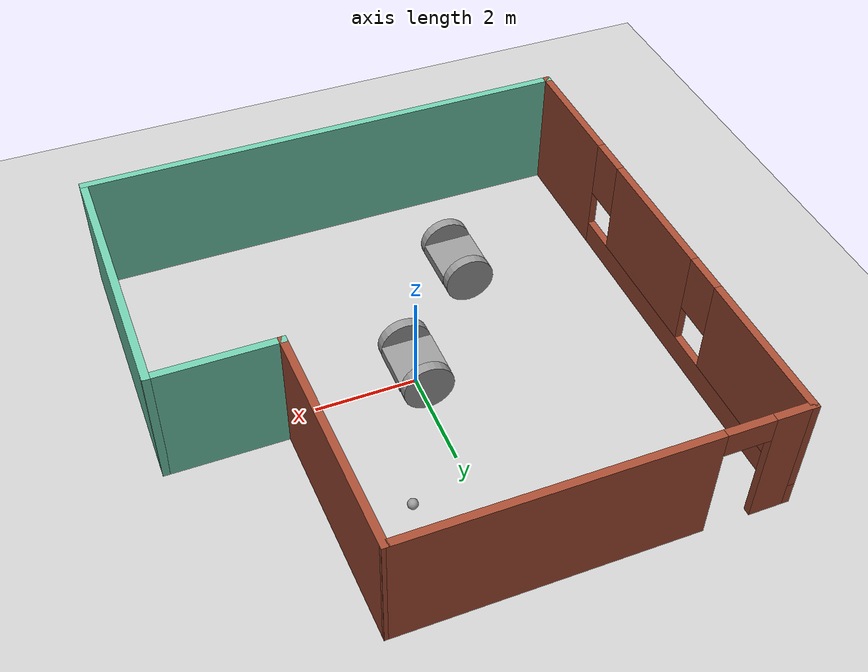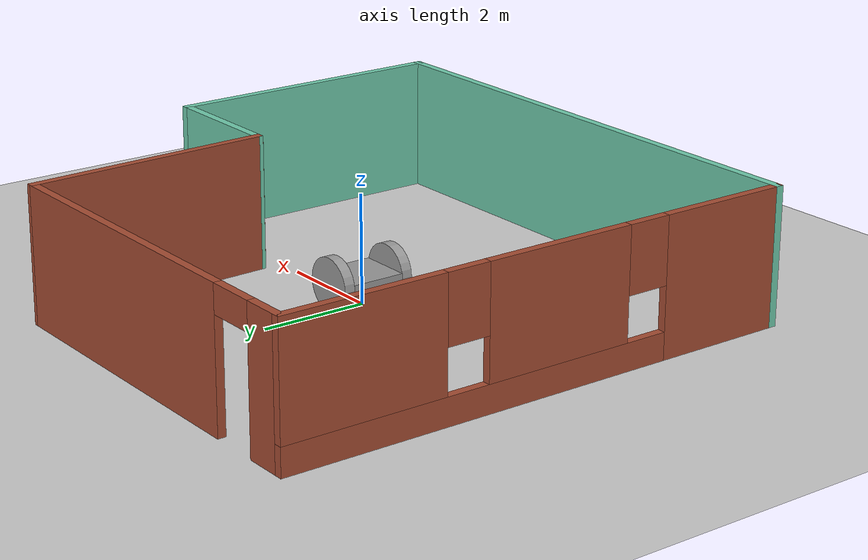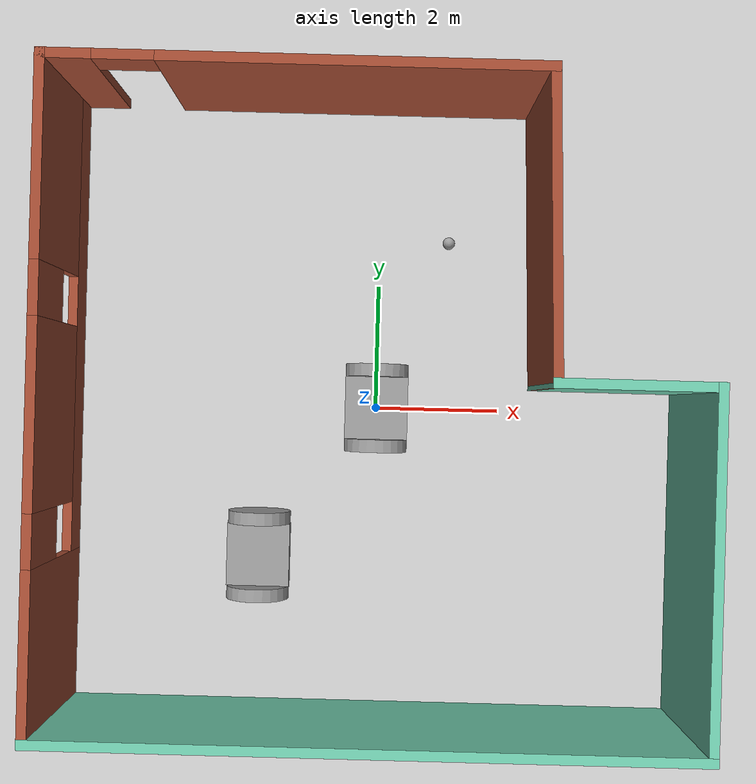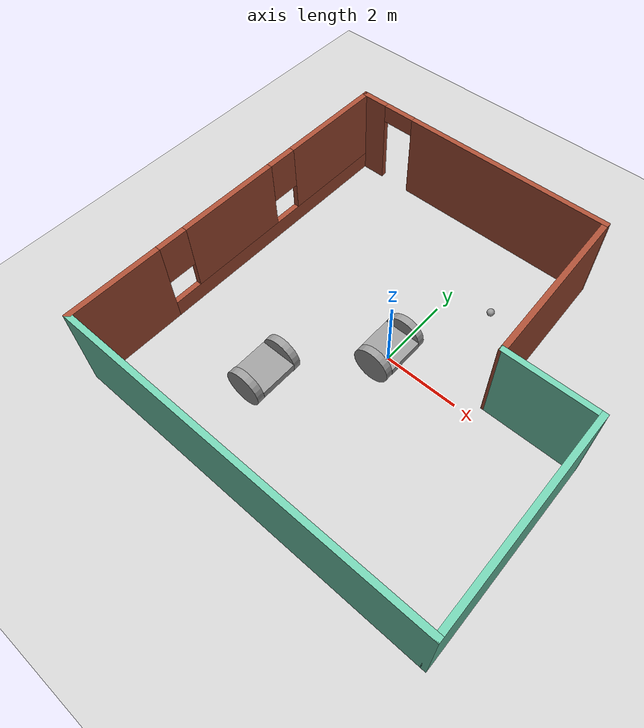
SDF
<sdf version="1.6">
 <world name="default">
  <plugin name="hello" filename="libhello.so"/>
  <light name="sun" type="directional">
   <pose>0 0 10 0 -0 0</pose>
   <diffuse>0.8 0.8 0.8 1</diffuse>
   <specular>0.2 0.2 0.2 1</specular>
   <attenuation>
    <range>1000</range>
    <constant>0.9</constant>
    <linear>0.01</linear>
    <quadratic>0.001</quadratic>
   </attenuation>
   <direction>-0.5 0.1 -0.9</direction>
  </light>
  <model name="ground_plane">
   <static>1</static>
   <link name="link">
    <collision name="collision">
     <geometry><plane><normal>0 0 1</normal><size>100 100</size></plane></geometry>
     <surface>
      <contact><collide_bitmask>65535</collide_bitmask></contact>
      <friction><ode><mu>100</mu><mu2>50</mu2></ode></friction>
     </surface>
    </collision>
    <visual name="visual">
     <cast_shadows>0</cast_shadows>
     <geometry><plane><normal>0 0 1</normal><size>100 100</size></plane></geometry>
     <material>
      <script><uri>file://media/materials/scripts/gazebo.material</uri><name>Gazebo/Grey</name></script>
     </material>
    </visual>
   </link>
  </model>
  <gravity>0 0 -9.8</gravity>
  <magnetic_field>6e-06 2.3e-05 -4.2e-05</magnetic_field>
  <atmosphere type="adiabatic"/>
  <physics name="default_physics" default="0" type="ode">
   <max_step_size>0.001</max_step_size>
   <real_time_factor>1</real_time_factor>
   <real_time_update_rate>1000</real_time_update_rate>
  </physics>
  <scene><ambient>0.4 0.4 0.4 1</ambient><background>0.7 0.7 0.7 1</background><shadows>1</shadows></scene>
  <spherical_coordinates>
   <surface_model>EARTH_WGS84</surface_model>
   <latitude_deg>0</latitude_deg>
   <longitude_deg>0</longitude_deg>
   <elevation>0</elevation>
   <heading_deg>0</heading_deg>
  </spherical_coordinates>
  <model name="Robot">
   <link name="link_0">
    <inertial>
     <mass>1</mass>
     <inertia>
      <ixx>0.166667</ixx>
      <ixy>0</ixy>
      <ixz>0</ixz>
      <iyy>0.166667</iyy>
      <iyz>0</iyz>
      <izz>0.166667</izz>
     </inertia>
    </inertial>
    <visual name="visual">
     <geometry><box><size>1 1 0.2</size></box></geometry>
     <material>
      <lighting>1</lighting>
      <script><uri>file://media/materials/scripts/gazebo.material</uri><name>Gazebo/Grey</name></script>
      <shader type="pixel"><normal_map>__default__</normal_map></shader>
      <ambient>0.3 0.3 0.3 1</ambient>
      <diffuse>0.7 0.7 0.7 1</diffuse>
      <specular>0.01 0.01 0.01 1</specular>
      <emissive>0 0 0 1</emissive>
     </material>
    </visual>
    <collision name="collision">
     <geometry><box><size>1 1 0.2</size></box></geometry>
     <surface>
      <friction>
       <ode><mu>1</mu><mu2>1</mu2><fdir1>0 0 0</fdir1><slip1>0</slip1><slip2>0</slip2></ode>
       <torsional>
        <coefficient>1</coefficient>
        <patch_radius>0</patch_radius>
        <surface_radius>0</surface_radius>
        <use_patch_radius>1</use_patch_radius>
        <ode><slip>0</slip></ode>
       </torsional>
      </friction>
      <bounce><restitution_coefficient>0</restitution_coefficient><threshold>1e+06</threshold></bounce>
      <contact>
       <collide_without_contact>0</collide_without_contact>
       <collide_without_contact_bitmask>1</collide_without_contact_bitmask>
       <collide_bitmask>1</collide_bitmask>
       <ode>
        <soft_cfm>0</soft_cfm>
        <soft_erp>0.2</soft_erp>
        <kp>1e+13</kp>
        <kd>1</kd>
        <max_vel>0.01</max_vel>
        <min_depth>0</min_depth>
       </ode>
       <bullet>
        <split_impulse>1</split_impulse>
        <split_impulse_penetration_threshold>-0.01</split_impulse_penetration_threshold>
        <soft_cfm>0</soft_cfm>
        <soft_erp>0.2</soft_erp>
        <kp>1e+13</kp>
        <kd>1</kd>
       </bullet>
      </contact>
     </surface>
    </collision>
   </link>
   <link name="link_1">
    <pose>0 0.6 0 1.5708 -0 0</pose>
    <inertial>
     <mass>1</mass>
     <inertia><ixx>0.145833</ixx><ixy>0</ixy><ixz>0</ixz><iyy>0.145833</iyy><iyz>0</iyz><izz>0.125</izz></inertia>
    </inertial>
    <visual name="visual">
     <geometry><cylinder><radius>0.5</radius><length>0.2</length></cylinder></geometry>
     <material>
      <lighting>1</lighting>
      <script><uri>file://media/materials/scripts/gazebo.material</uri><name>Gazebo/Grey</name></script>
      <shader type="pixel"><normal_map>__default__</normal_map></shader>
      <ambient>0.3 0.3 0.3 1</ambient>
      <diffuse>0.7 0.7 0.7 1</diffuse>
      <specular>0.01 0.01 0.01 1</specular>
      <emissive>0 0 0 1</emissive>
     </material>
    </visual>
    <collision name="collision">
     <geometry><cylinder><radius>0.5</radius><length>0.2</length></cylinder></geometry>
     <surface>
      <friction>
       <ode><mu>1</mu><mu2>1</mu2><fdir1>0 0 0</fdir1><slip1>0</slip1><slip2>0</slip2></ode>
       <torsional>
        <coefficient>1</coefficient>
        <patch_radius>0</patch_radius>
        <surface_radius>0</surface_radius>
        <use_patch_radius>1</use_patch_radius>
        <ode><slip>0</slip></ode>
       </torsional>
      </friction>
      <bounce><restitution_coefficient>0</restitution_coefficient><threshold>1e+06</threshold></bounce>
      <contact>
       <collide_without_contact>0</collide_without_contact>
       <collide_without_contact_bitmask>1</collide_without_contact_bitmask>
       <collide_bitmask>1</collide_bitmask>
       <ode>
        <soft_cfm>0</soft_cfm>
        <soft_erp>0.2</soft_erp>
        <kp>1e+13</kp>
        <kd>1</kd>
        <max_vel>0.01</max_vel>
        <min_depth>0</min_depth>
       </ode>
       <bullet>
        <split_impulse>1</split_impulse>
        <split_impulse_penetration_threshold>-0.01</split_impulse_penetration_threshold>
        <soft_cfm>0</soft_cfm>
        <soft_erp>0.2</soft_erp>
        <kp>1e+13</kp>
        <kd>1</kd>
       </bullet>
      </contact>
     </surface>
    </collision>
   </link>
   <link name="link_1_clone">
    <pose>0 -0.6 0 1.5708 -0 0</pose>
    <inertial>
     <mass>1</mass>
     <inertia><ixx>0.145833</ixx><ixy>0</ixy><ixz>0</ixz><iyy>0.145833</iyy><iyz>0</iyz><izz>0.125</izz></inertia>
    </inertial>
    <visual name="visual">
     <geometry><cylinder><radius>0.5</radius><length>0.2</length></cylinder></geometry>
     <material>
      <lighting>1</lighting>
      <script><uri>file://media/materials/scripts/gazebo.material</uri><name>Gazebo/Grey</name></script>
      <shader type="pixel"><normal_map>__default__</normal_map></shader>
      <ambient>0.3 0.3 0.3 1</ambient>
      <diffuse>0.7 0.7 0.7 1</diffuse>
      <specular>0.01 0.01 0.01 1</specular>
      <emissive>0 0 0 1</emissive>
     </material>
    </visual>
    <collision name="collision">
     <geometry><cylinder><radius>0.5</radius><length>0.2</length></cylinder></geometry>
     <surface>
      <friction>
       <ode><mu>1</mu><mu2>1</mu2><fdir1>0 0 0</fdir1><slip1>0</slip1><slip2>0</slip2></ode>
       <torsional>
        <coefficient>1</coefficient>
        <patch_radius>0</patch_radius>
        <surface_radius>0</surface_radius>
        <use_patch_radius>1</use_patch_radius>
        <ode><slip>0</slip></ode>
       </torsional>
      </friction>
      <bounce><restitution_coefficient>0</restitution_coefficient><threshold>1e+06</threshold></bounce>
      <contact>
       <collide_without_contact>0</collide_without_contact>
       <collide_without_contact_bitmask>1</collide_without_contact_bitmask>
       <collide_bitmask>1</collide_bitmask>
       <ode>
        <soft_cfm>0</soft_cfm>
        <soft_erp>0.2</soft_erp>
        <kp>1e+13</kp>
        <kd>1</kd>
        <max_vel>0.01</max_vel>
        <min_depth>0</min_depth>
       </ode>
       <bullet>
        <split_impulse>1</split_impulse>
        <split_impulse_penetration_threshold>-0.01</split_impulse_penetration_threshold>
        <soft_cfm>0</soft_cfm>
        <soft_erp>0.2</soft_erp>
        <kp>1e+13</kp>
        <kd>1</kd>
       </bullet>
      </contact>
     </surface>
    </collision>
   </link>
   <joint name="link_0_JOINT_0" type="revolute">
    <parent>link_0</parent>
    <child>link_1_clone</child>
    <axis>
     <xyz>1 0 0</xyz>
     <use_parent_model_frame>0</use_parent_model_frame>
     <limit>
      <lower>-1.79769e+308</lower>
      <upper>1.79769e+308</upper>
      <effort>-1</effort>
      <velocity>-1</velocity>
     </limit>
     <dynamics>
      <spring_reference>0</spring_reference>
      <spring_stiffness>0</spring_stiffness>
      <damping>0</damping>
     </dynamics>
    </axis>
    <physics>
     <ode><limit><cfm>0</cfm><erp>0.2</erp></limit><suspension><cfm>0</cfm><erp>0.2</erp></suspension></ode>
    </physics>
   </joint>
   <joint name="link_0_JOINT_1" type="revolute">
    <parent>link_0</parent>
    <child>link_1</child>
    <axis>
     <xyz>1 0 0</xyz>
     <use_parent_model_frame>0</use_parent_model_frame>
     <limit>
      <lower>-1.79769e+308</lower>
      <upper>1.79769e+308</upper>
      <effort>-1</effort>
      <velocity>-1</velocity>
     </limit>
     <dynamics>
      <spring_reference>0</spring_reference>
      <spring_stiffness>0</spring_stiffness>
      <damping>0</damping>
     </dynamics>
    </axis>
    <physics>
     <ode><limit><cfm>0</cfm><erp>0.2</erp></limit><suspension><cfm>0</cfm><erp>0.2</erp></suspension></ode>
    </physics>
   </joint>
   <static>0</static>
   <pose>0 -0.001839 0.499997 4e-06 -0 0</pose>
  </model>
  <model name="Robot_0">
   <link name="link_0">
    <inertial>
     <mass>1</mass>
     <inertia>
      <ixx>0.166667</ixx>
      <ixy>0</ixy>
      <ixz>0</ixz>
      <iyy>0.166667</iyy>
      <iyz>0</iyz>
      <izz>0.166667</izz>
     </inertia>
    </inertial>
    <visual name="visual">
     <geometry><box><size>1 1 0.2</size></box></geometry>
     <material>
      <lighting>1</lighting>
      <script><uri>file://media/materials/scripts/gazebo.material</uri><name>Gazebo/Grey</name></script>
      <shader type="pixel"><normal_map>__default__</normal_map></shader>
      <ambient>0.3 0.3 0.3 1</ambient>
      <diffuse>0.7 0.7 0.7 1</diffuse>
      <specular>0.01 0.01 0.01 1</specular>
      <emissive>0 0 0 1</emissive>
     </material>
    </visual>
    <collision name="collision">
     <geometry><box><size>1 1 0.2</size></box></geometry>
     <surface>
      <friction>
       <ode><mu>1</mu><mu2>1</mu2><fdir1>0 0 0</fdir1><slip1>0</slip1><slip2>0</slip2></ode>
       <torsional>
        <coefficient>1</coefficient>
        <patch_radius>0</patch_radius>
        <surface_radius>0</surface_radius>
        <use_patch_radius>1</use_patch_radius>
        <ode><slip>0</slip></ode>
       </torsional>
      </friction>
      <bounce><restitution_coefficient>0</restitution_coefficient><threshold>1e+06</threshold></bounce>
      <contact>
       <collide_without_contact>0</collide_without_contact>
       <collide_without_contact_bitmask>1</collide_without_contact_bitmask>
       <collide_bitmask>1</collide_bitmask>
       <ode>
        <soft_cfm>0</soft_cfm>
        <soft_erp>0.2</soft_erp>
        <kp>1e+13</kp>
        <kd>1</kd>
        <max_vel>0.01</max_vel>
        <min_depth>0</min_depth>
       </ode>
       <bullet>
        <split_impulse>1</split_impulse>
        <split_impulse_penetration_threshold>-0.01</split_impulse_penetration_threshold>
        <soft_cfm>0</soft_cfm>
        <soft_erp>0.2</soft_erp>
        <kp>1e+13</kp>
        <kd>1</kd>
       </bullet>
      </contact>
     </surface>
    </collision>
   </link>
   <link name="link_1">
    <pose>0 0.6 0 1.5708 -0 0</pose>
    <inertial>
     <mass>1</mass>
     <inertia><ixx>0.145833</ixx><ixy>0</ixy><ixz>0</ixz><iyy>0.145833</iyy><iyz>0</iyz><izz>0.125</izz></inertia>
    </inertial>
    <visual name="visual">
     <geometry><cylinder><radius>0.5</radius><length>0.2</length></cylinder></geometry>
     <material>
      <lighting>1</lighting>
      <script><uri>file://media/materials/scripts/gazebo.material</uri><name>Gazebo/Grey</name></script>
      <shader type="pixel"><normal_map>__default__</normal_map></shader>
      <ambient>0.3 0.3 0.3 1</ambient>
      <diffuse>0.7 0.7 0.7 1</diffuse>
      <specular>0.01 0.01 0.01 1</specular>
      <emissive>0 0 0 1</emissive>
     </material>
    </visual>
    <collision name="collision">
     <geometry><cylinder><radius>0.5</radius><length>0.2</length></cylinder></geometry>
     <surface>
      <friction>
       <ode><mu>1</mu><mu2>1</mu2><fdir1>0 0 0</fdir1><slip1>0</slip1><slip2>0</slip2></ode>
       <torsional>
        <coefficient>1</coefficient>
        <patch_radius>0</patch_radius>
        <surface_radius>0</surface_radius>
        <use_patch_radius>1</use_patch_radius>
        <ode><slip>0</slip></ode>
       </torsional>
      </friction>
      <bounce><restitution_coefficient>0</restitution_coefficient><threshold>1e+06</threshold></bounce>
      <contact>
       <collide_without_contact>0</collide_without_contact>
       <collide_without_contact_bitmask>1</collide_without_contact_bitmask>
       <collide_bitmask>1</collide_bitmask>
       <ode>
        <soft_cfm>0</soft_cfm>
        <soft_erp>0.2</soft_erp>
        <kp>1e+13</kp>
        <kd>1</kd>
        <max_vel>0.01</max_vel>
        <min_depth>0</min_depth>
       </ode>
       <bullet>
        <split_impulse>1</split_impulse>
        <split_impulse_penetration_threshold>-0.01</split_impulse_penetration_threshold>
        <soft_cfm>0</soft_cfm>
        <soft_erp>0.2</soft_erp>
        <kp>1e+13</kp>
        <kd>1</kd>
       </bullet>
      </contact>
     </surface>
    </collision>
   </link>
   <link name="link_1_clone">
    <pose>0 -0.6 0 1.5708 -0 0</pose>
    <inertial>
     <mass>1</mass>
     <inertia><ixx>0.145833</ixx><ixy>0</ixy><ixz>0</ixz><iyy>0.145833</iyy><iyz>0</iyz><izz>0.125</izz></inertia>
    </inertial>
    <visual name="visual">
     <geometry><cylinder><radius>0.5</radius><length>0.2</length></cylinder></geometry>
     <material>
      <lighting>1</lighting>
      <script><uri>file://media/materials/scripts/gazebo.material</uri><name>Gazebo/Grey</name></script>
      <shader type="pixel"><normal_map>__default__</normal_map></shader>
      <ambient>0.3 0.3 0.3 1</ambient>
      <diffuse>0.7 0.7 0.7 1</diffuse>
      <specular>0.01 0.01 0.01 1</specular>
      <emissive>0 0 0 1</emissive>
     </material>
    </visual>
    <collision name="collision">
     <geometry><cylinder><radius>0.5</radius><length>0.2</length></cylinder></geometry>
     <surface>
      <friction>
       <ode><mu>1</mu><mu2>1</mu2><fdir1>0 0 0</fdir1><slip1>0</slip1><slip2>0</slip2></ode>
       <torsional>
        <coefficient>1</coefficient>
        <patch_radius>0</patch_radius>
        <surface_radius>0</surface_radius>
        <use_patch_radius>1</use_patch_radius>
        <ode><slip>0</slip></ode>
       </torsional>
      </friction>
      <bounce><restitution_coefficient>0</restitution_coefficient><threshold>1e+06</threshold></bounce>
      <contact>
       <collide_without_contact>0</collide_without_contact>
       <collide_without_contact_bitmask>1</collide_without_contact_bitmask>
       <collide_bitmask>1</collide_bitmask>
       <ode>
        <soft_cfm>0</soft_cfm>
        <soft_erp>0.2</soft_erp>
        <kp>1e+13</kp>
        <kd>1</kd>
        <max_vel>0.01</max_vel>
        <min_depth>0</min_depth>
       </ode>
       <bullet>
        <split_impulse>1</split_impulse>
        <split_impulse_penetration_threshold>-0.01</split_impulse_penetration_threshold>
        <soft_cfm>0</soft_cfm>
        <soft_erp>0.2</soft_erp>
        <kp>1e+13</kp>
        <kd>1</kd>
       </bullet>
      </contact>
     </surface>
    </collision>
   </link>
   <joint name="link_0_JOINT_0" type="revolute">
    <parent>link_0</parent>
    <child>link_1_clone</child>
    <axis>
     <xyz>1 0 0</xyz>
     <use_parent_model_frame>0</use_parent_model_frame>
     <limit>
      <lower>-1.79769e+308</lower>
      <upper>1.79769e+308</upper>
      <effort>-1</effort>
      <velocity>-1</velocity>
     </limit>
     <dynamics>
      <spring_reference>0</spring_reference>
      <spring_stiffness>0</spring_stiffness>
      <damping>0</damping>
     </dynamics>
    </axis>
    <physics>
     <ode><limit><cfm>0</cfm><erp>0.2</erp></limit><suspension><cfm>0</cfm><erp>0.2</erp></suspension></ode>
    </physics>
   </joint>
   <joint name="link_0_JOINT_1" type="revolute">
    <parent>link_0</parent>
    <child>link_1</child>
    <axis>
     <xyz>1 0 0</xyz>
     <use_parent_model_frame>0</use_parent_model_frame>
     <limit>
      <lower>-1.79769e+308</lower>
      <upper>1.79769e+308</upper>
      <effort>-1</effort>
      <velocity>-1</velocity>
     </limit>
     <dynamics>
      <spring_reference>0</spring_reference>
      <spring_stiffness>0</spring_stiffness>
      <damping>0</damping>
     </dynamics>
    </axis>
    <physics>
     <ode><limit><cfm>0</cfm><erp>0.2</erp></limit><suspension><cfm>0</cfm><erp>0.2</erp></suspension></ode>
    </physics>
   </joint>
   <static>0</static>
   <pose>-1.83002 -2.39669 0.499997 4e-06 -0 0</pose>
  </model>
  <model name="Building">
   <link name="Wall_0">
    <collision name="Wall_0_Collision">
     <geometry><box><size>10 0.15 2.5</size></box></geometry>
     <pose>0 0 1.25 0 -0 0</pose>
    </collision>
    <visual name="Wall_0_Visual">
     <pose>0 0 1.25 0 -0 0</pose>
     <geometry><box><size>10 0.15 2.5</size></box></geometry>
     <material>
      <script><uri>file://media/materials/scripts/gazebo.material</uri><name>Gazebo/Grey</name></script>
      <ambient>0.435294 0.796078 0.67451 1</ambient>
     </material>
     <meta><layer>0</layer></meta>
    </visual>
    <pose>0 -4.92623 0 0 -0 0</pose>
   </link>
   <link name="Wall_2">
    <collision name="Wall_2_Collision">
     <geometry><box><size>5.5 0.15 2.5</size></box></geometry>
     <pose>0 0 1.25 0 -0 0</pose>
    </collision>
    <visual name="Wall_2_Visual">
     <pose>0 0 1.25 0 -0 0</pose>
     <geometry><box><size>5.5 0.15 2.5</size></box></geometry>
     <material>
      <script><uri>file://media/materials/scripts/gazebo.material</uri><name>Gazebo/Grey</name></script>
      <ambient>0.435294 0.796078 0.67451 1</ambient>
     </material>
     <meta><layer>0</layer></meta>
    </visual>
    <pose>4.925 -2.25123 0 0 -0 1.5708</pose>
   </link>
   <link name="Wall_3">
    <collision name="Wall_3_Collision">
     <geometry><box><size>2.5 0.15 2.5</size></box></geometry>
     <pose>0 0 1.25 0 -0 0</pose>
    </collision>
    <visual name="Wall_3_Visual">
     <pose>0 0 1.25 0 -0 0</pose>
     <geometry><box><size>2.5 0.15 2.5</size></box></geometry>
     <material>
      <script><uri>file://media/materials/scripts/gazebo.material</uri><name>Gazebo/Grey</name></script>
      <ambient>0.435294 0.796078 0.67451 1</ambient>
     </material>
     <meta><layer>0</layer></meta>
    </visual>
    <pose>3.75 0.423772 0 0 -0 3.14159</pose>
   </link>
   <link name="Wall_5">
    <pose>-4.925 -0.001228 0 0 -0 1.5708</pose>
    <visual name="Wall_5_Visual_0">
     <pose>-3.71842 0 1.25 0 -0 0</pose>
     <geometry><box><size>2.56316 0.15 2.5</size></box></geometry>
     <material>
      <script><uri>file://media/materials/scripts/gazebo.material</uri><name>Gazebo/Bricks</name></script>
      <ambient>0.996078 0.47451 0.0196078 1</ambient>
     </material>
     <meta><layer>0</layer></meta>
    </visual>
    <collision name="Wall_5_Collision_0">
     <geometry><box><size>2.56316 0.15 2.5</size></box></geometry>
     <pose>-3.71842 0 1.25 0 -0 0</pose>
    </collision>
    <visual name="Wall_5_Visual_1">
     <pose>1.28158 0 0.25 0 -0 0</pose>
     <geometry><box><size>7.43684 0.15 0.5</size></box></geometry>
     <material>
      <script><uri>file://media/materials/scripts/gazebo.material</uri><name>Gazebo/Bricks</name></script>
      <ambient>0.996078 0.47451 0.0196078 1</ambient>
     </material>
     <meta><layer>0</layer></meta>
    </visual>
    <collision name="Wall_5_Collision_1">
     <geometry><box><size>7.43684 0.15 0.5</size></box></geometry>
     <pose>1.28158 0 0.25 0 -0 0</pose>
    </collision>
    <visual name="Wall_5_Visual_2">
     <pose>-0.226452 0 1.5 0 -0 0</pose>
     <geometry><box><size>2.82077 0.15 2</size></box></geometry>
     <material>
      <script><uri>file://media/materials/scripts/gazebo.material</uri><name>Gazebo/Bricks</name></script>
      <ambient>0.996078 0.47451 0.0196078 1</ambient>
     </material>
     <meta><layer>0</layer></meta>
    </visual>
    <collision name="Wall_5_Collision_2">
     <geometry><box><size>2.82077 0.15 2</size></box></geometry>
     <pose>-0.226452 0 1.5 0 -0 0</pose>
    </collision>
    <visual name="Wall_5_Visual_3">
     <pose>3.49197 0 1.5 0 -0 0</pose>
     <geometry><box><size>3.01607 0.15 2</size></box></geometry>
     <material>
      <script><uri>file://media/materials/scripts/gazebo.material</uri><name>Gazebo/Bricks</name></script>
      <ambient>0.996078 0.47451 0.0196078 1</ambient>
     </material>
     <meta><layer>0</layer></meta>
    </visual>
    <collision name="Wall_5_Collision_3">
     <geometry><box><size>3.01607 0.15 2</size></box></geometry>
     <pose>3.49197 0 1.5 0 -0 0</pose>
    </collision>
    <visual name="Wall_5_Visual_4">
     <pose>-2.03684 0 1.9 0 -0 0</pose>
     <geometry><box><size>0.8 0.15 1.2</size></box></geometry>
     <material>
      <script><uri>file://media/materials/scripts/gazebo.material</uri><name>Gazebo/Bricks</name></script>
      <ambient>0.996078 0.47451 0.0196078 1</ambient>
     </material>
     <meta><layer>0</layer></meta>
    </visual>
    <collision name="Wall_5_Collision_4">
     <geometry><box><size>0.8 0.15 1.2</size></box></geometry>
     <pose>-2.03684 0 1.9 0 -0 0</pose>
    </collision>
    <visual name="Wall_5_Visual_5">
     <pose>1.58394 0 1.9 0 -0 0</pose>
     <geometry><box><size>0.8 0.15 1.2</size></box></geometry>
     <material>
      <script><uri>file://media/materials/scripts/gazebo.material</uri><name>Gazebo/Bricks</name></script>
      <ambient>0.996078 0.47451 0.0196078 1</ambient>
     </material>
     <meta><layer>0</layer></meta>
    </visual>
    <collision name="Wall_5_Collision_5">
     <geometry><box><size>0.8 0.15 1.2</size></box></geometry>
     <pose>1.58394 0 1.9 0 -0 0</pose>
    </collision>
   </link>
   <link name="Wall_6">
    <pose>-1.25 4.92377 0 0 -0 0</pose>
    <visual name="Wall_6_Visual_0">
     <pose>-3.34822 0 1.25 0 -0 0</pose>
     <geometry><box><size>0.803553 0.15 2.5</size></box></geometry>
     <material>
      <script><uri>file://media/materials/scripts/gazebo.material</uri><name>Gazebo/Bricks</name></script>
      <ambient>0.996078 0.47451 0.0196078 1</ambient>
     </material>
     <meta><layer>0</layer></meta>
    </visual>
    <collision name="Wall_6_Collision_0">
     <geometry><box><size>0.803553 0.15 2.5</size></box></geometry>
     <pose>-3.34822 0 1.25 0 -0 0</pose>
    </collision>
    <visual name="Wall_6_Visual_1">
     <pose>0.851777 0 1.25 0 -0 0</pose>
     <geometry><box><size>5.79645 0.15 2.5</size></box></geometry>
     <material>
      <script><uri>file://media/materials/scripts/gazebo.material</uri><name>Gazebo/Bricks</name></script>
      <ambient>0.996078 0.47451 0.0196078 1</ambient>
     </material>
     <meta><layer>0</layer></meta>
    </visual>
    <collision name="Wall_6_Collision_1">
     <geometry><box><size>5.79645 0.15 2.5</size></box></geometry>
     <pose>0.851777 0 1.25 0 -0 0</pose>
    </collision>
    <visual name="Wall_6_Visual_2">
     <pose>-2.49645 0 2.25 0 -0 0</pose>
     <geometry><box><size>0.9 0.15 0.5</size></box></geometry>
     <material>
      <script><uri>file://media/materials/scripts/gazebo.material</uri><name>Gazebo/Bricks</name></script>
      <ambient>0.996078 0.47451 0.0196078 1</ambient>
     </material>
     <meta><layer>0</layer></meta>
    </visual>
    <collision name="Wall_6_Collision_2">
     <geometry><box><size>0.9 0.15 0.5</size></box></geometry>
     <pose>-2.49645 0 2.25 0 -0 0</pose>
    </collision>
   </link>
   <link name="Wall_7">
    <collision name="Wall_7_Collision">
     <geometry><box><size>4.6525 0.15 2.5</size></box></geometry>
     <pose>0 0 1.25 0 -0 0</pose>
    </collision>
    <visual name="Wall_7_Visual">
     <pose>0 0 1.25 0 -0 0</pose>
     <geometry><box><size>4.6525 0.15 2.5</size></box></geometry>
     <material>
      <script><uri>file://media/materials/scripts/gazebo.material</uri><name>Gazebo/Bricks</name></script>
      <ambient>0.996078 0.47451 0.0196078 1</ambient>
     </material>
     <meta><layer>0</layer></meta>
    </visual>
    <pose>2.5 2.67377 0 0 0 -1.53747</pose>
   </link>
   <static>1</static>
  </model>
  <model name="my_ball">
   <link name="link_0">
    <inertial>
     <mass>1</mass>
     <inertia><ixx>0.1</ixx><ixy>0</ixy><ixz>0</ixz><iyy>0.1</iyy><iyz>0</iyz><izz>0.1</izz></inertia>
    </inertial>
    <visual name="visual">
     <geometry><sphere><radius>0.1</radius></sphere></geometry>
     <material>
      <lighting>1</lighting>
      <script><uri>file://media/materials/scripts/gazebo.material</uri><name>Gazebo/Grey</name></script>
      <shader type="pixel"><normal_map>__default__</normal_map></shader>
      <ambient>1 1 1 1</ambient>
      <diffuse>1 1 1 1</diffuse>
      <specular>1 1 1 1</specular>
      <emissive>1 1 1 1</emissive>
     </material>
    </visual>
    <collision name="collision">
     <geometry><sphere><radius>0.1</radius></sphere></geometry>
     <surface>
      <friction>
       <ode><mu>1</mu><mu2>1</mu2><fdir1>0 0 0</fdir1><slip1>0</slip1><slip2>0</slip2></ode>
       <torsional>
        <coefficient>1</coefficient>
        <patch_radius>0</patch_radius>
        <surface_radius>0</surface_radius>
        <use_patch_radius>1</use_patch_radius>
        <ode><slip>0</slip></ode>
       </torsional>
      </friction>
      <bounce><restitution_coefficient>0</restitution_coefficient><threshold>1e+06</threshold></bounce>
      <contact>
       <collide_without_contact>0</collide_without_contact>
       <collide_without_contact_bitmask>1</collide_without_contact_bitmask>
       <collide_bitmask>1</collide_bitmask>
       <ode>
        <soft_cfm>0</soft_cfm>
        <soft_erp>0.2</soft_erp>
        <kp>1e+13</kp>
        <kd>1</kd>
        <max_vel>0.01</max_vel>
        <min_depth>0</min_depth>
       </ode>
       <bullet>
        <split_impulse>1</split_impulse>
        <split_impulse_penetration_threshold>-0.01</split_impulse_penetration_threshold>
        <soft_cfm>0</soft_cfm>
        <soft_erp>0.2</soft_erp>
        <kp>1e+13</kp>
        <kd>1</kd>
       </bullet>
      </contact>
     </surface>
    </collision>
   </link>
   <static>0</static>
   <pose>1.12606 2.73818 0.1 0 -0 0</pose>
  </model>
 </world>
</sdf>
